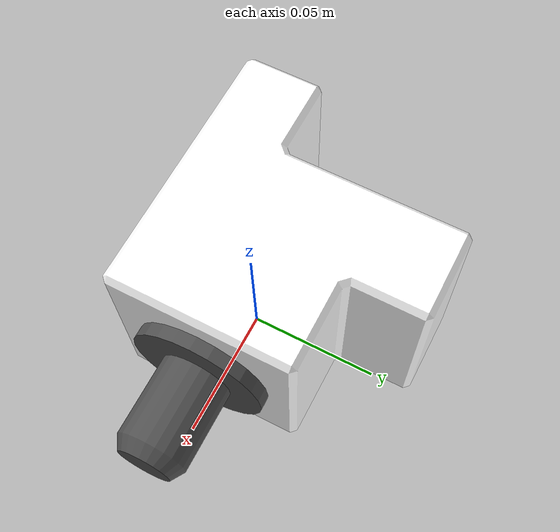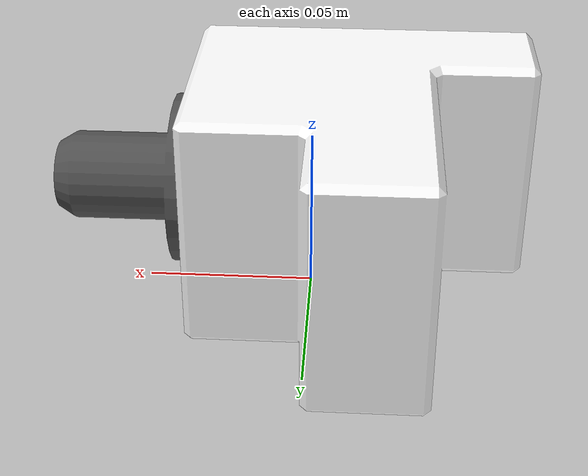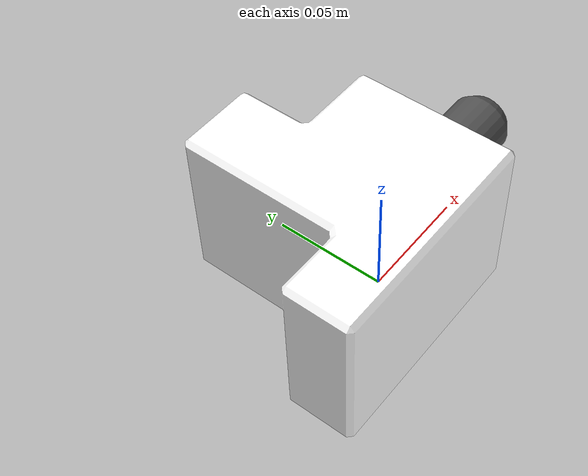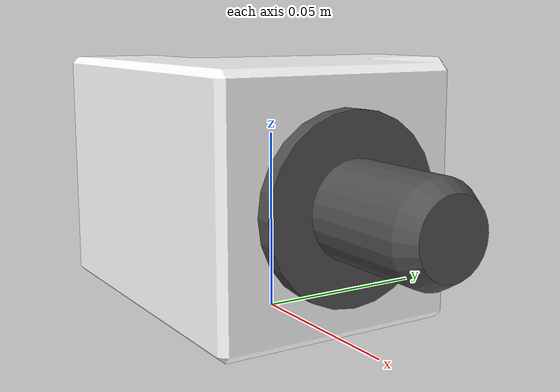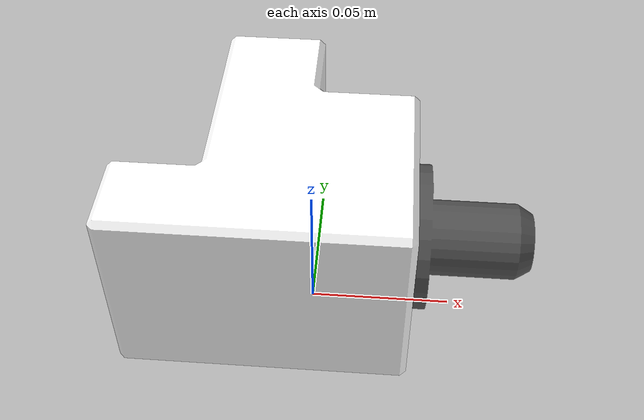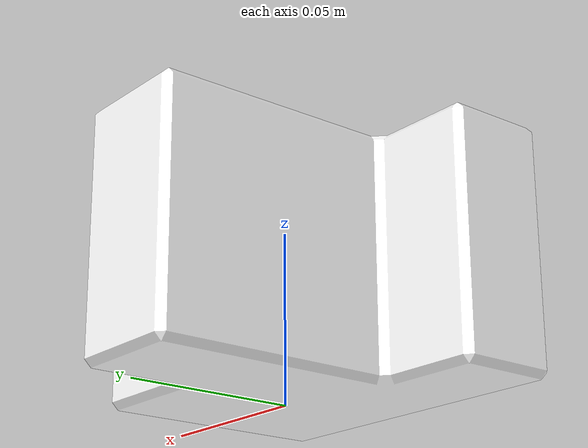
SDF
<?xml version="1.0" ?>
<sdf version="1.6">
  <model name="sensor">
    <static>false</static>
    <allow_auto_disable>false</allow_auto_disable>

    <link name="sensor_link">
      <inertial>
        <pose>0 0 0.035 0 0 0</pose>

        <mass>1.89</mass>

        <ixx>0.00235</ixx>
        <ixy>0</ixy>
        <ixz>0</ixz>
        <iyy>0.00169</iyy>
        <iyz>0</iyz>
        <izz>0.00315</izz>
      </inertial>

      <visual name="base">
        <geometry>
          <mesh>
            <uri>model://sensor/meshes/sensor_base.stl</uri>
          </mesh>
        </geometry>
        <material>
          <ambient>1.0 1.0 1.0 1.0</ambient>
          <diffuse>1.0 1.0 1.0 1.0</diffuse>
        </material>
      </visual>

      <visual name="peg">
        <geometry>
          <mesh>
            <uri>model://sensor/meshes/sensor_peg.stl</uri>
          </mesh>
        </geometry>
        <material>
          <ambient>0.318 0.318 0.318 1.0</ambient>
          <diffuse>0.318 0.318 0.318 1.0</diffuse>
        </material>
      </visual>

      <collision name="collision">
        <geometry>
          <mesh>
            <uri>model://sensor/meshes/sensor_collision.stl</uri>
          </mesh>
        </geometry>
        <max_contacts>10</max_contacts>
        <surface>
          <contact>
            <ode>
              <max_vel>0.0</max_vel>
              <min_depth>0.001</min_depth>
            </ode>
          </contact>
          <friction>
            <ode>
              <mu>1000</mu>
              <mu2>1000</mu2>
            </ode>
          </friction>
        </surface>
      </collision>
    </link>
  </model>
</sdf>
